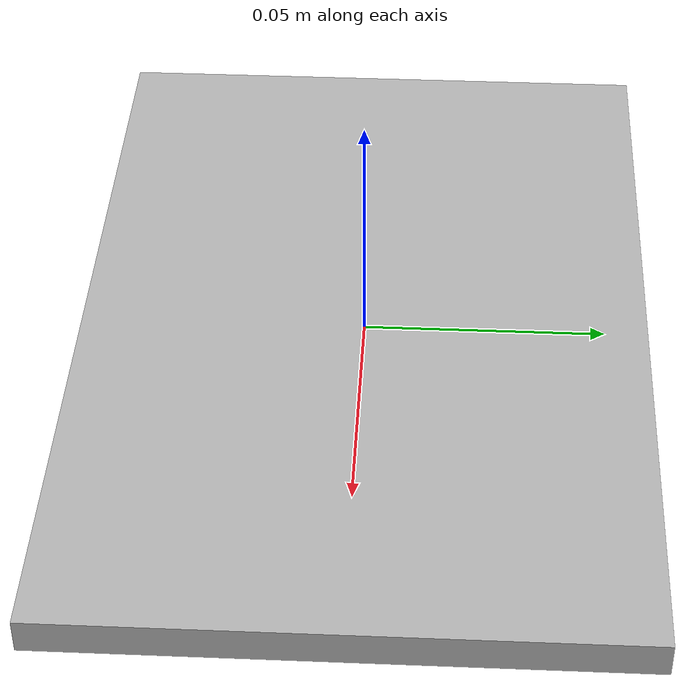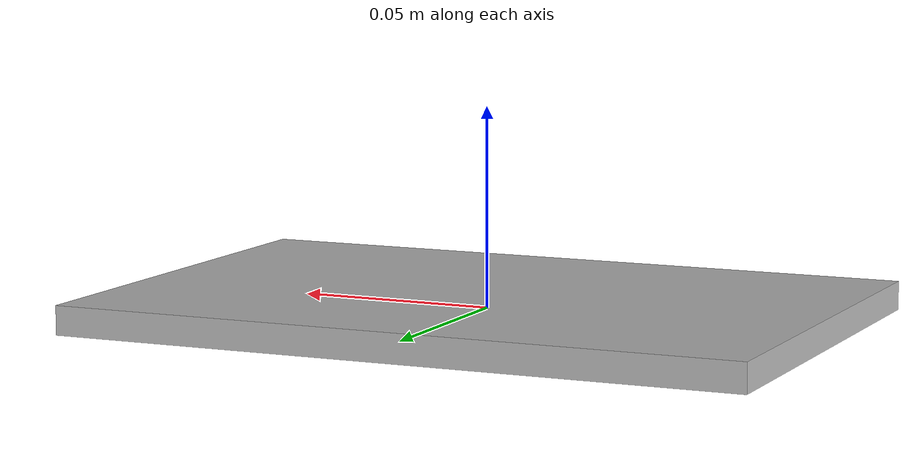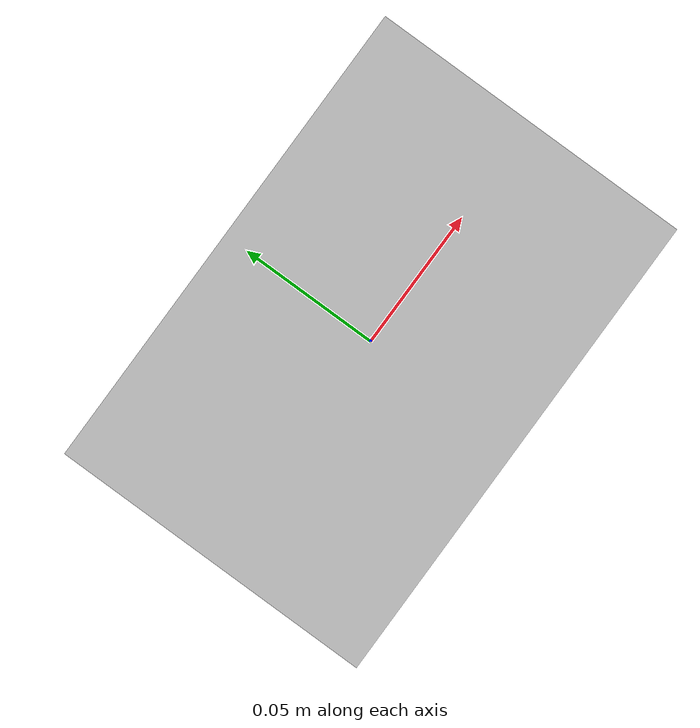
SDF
<?xml version="1.0"?>
<sdf version="1.4">
  <model name="task_board">

  <pose>0 0 0 0 0 0</pose>

    <static>true</static>
     <link name="body">

     <visual name='visual'>

      <geometry>
        <mesh>
          <uri>model://task_board/mesh/PLAYSTAGE.dae</uri>
          <scale>4.0 4.0 1.0</scale>
        </mesh>
      </geometry>
     </visual>
     <collision name='bcol'>
     	<geometry>
     		<box>
     			<size>0.2 0.2 0.005</size>
     		</box>
     	</geometry>
     </collision>

  </link>
  </model>
</sdf>
